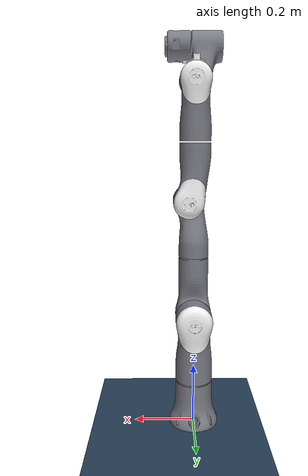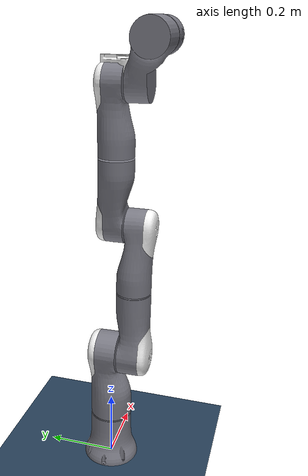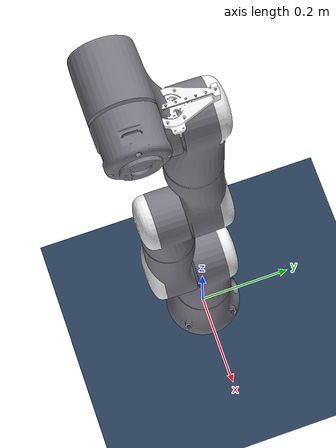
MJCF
<mujoco model="flexiv scene">
  <include file="flexiv_rizon4.xml"/>

  <visual>
    <headlight diffuse="0.6 0.6 0.6" ambient="0.3 0.3 0.3" specular="0 0 0"/>
    <rgba haze="0.15 0.25 0.35 1"/>
    <global azimuth="120" elevation="-10"/>
  </visual>

  <asset>
    <texture type="skybox" builtin="gradient" rgb1="0.3 0.5 0.7" rgb2="0 0 0" width="512" height="3072"/>
    <texture type="2d" name="groundplane" builtin="checker" mark="edge" rgb1="0.2 0.3 0.4" rgb2="0.1 0.2 0.3"
      markrgb="0.8 0.8 0.8" width="300" height="300"/>
    <material name="groundplane" texture="groundplane" texuniform="true" texrepeat="5 5" reflectance="0.2"/>
  </asset>

  <worldbody>
    <light pos="0 0 1.5" dir="0 0 -1" directional="true"/>
    <geom name="floor" size="0 0 0.05" type="plane" material="groundplane"/>
  </worldbody>
</mujoco>

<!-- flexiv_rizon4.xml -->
<mujoco model="A02L-M4">
  <compiler angle="radian" meshdir="assets" autolimits="true"/>

  <option integrator="implicitfast"/>

  <default>
    <default class="Rizon4">
      <geom type="mesh" material="robot"/>
      <position inheritrange="1"/>
      <default class="joint1">
        <joint actuatorfrcrange="-123 123" armature="3.17"/>
      </default>
      <default class="joint2">
        <joint actuatorfrcrange="-64 64" armature="1.38"/>
      </default>
      <default class="joint3">
        <joint actuatorfrcrange="-39 39" armature="0.13"/>
      </default>
    </default>
  </default>

  <asset>
    <material name="cover" specular="0.91" shininess="0.91" rgba="0.97 0.97 0.97 1"/>
    <material name="robot" specular="0.96" shininess="0.9" rgba="0.49 0.49 0.53 1"/>

    <mesh file="link0/link0.obj"/>
    <mesh file="link1/link1_0.obj"/>
    <mesh file="link1/link1_1.obj"/>
    <mesh file="link2/link2_0.obj"/>
    <mesh file="link2/link2_1.obj"/>
    <mesh file="link3/link3_0.obj"/>
    <mesh file="link3/link3_1.obj"/>
    <mesh file="link4/link4_0.obj"/>
    <mesh file="link4/link4_1.obj"/>
    <mesh file="link5/link5_0.obj"/>
    <mesh file="link5/link5_1.obj"/>
    <mesh file="link6/link6_0.obj"/>
    <mesh file="link6/link6_1.obj"/>
    <mesh file="link7/link7.obj"/>
  </asset>

  <worldbody>
    <light name="top" pos="0 0 2" mode="trackcom"/>
    <body name="base" childclass="Rizon4">
      <geom name="convex_mesh" mesh="link0"/>
      <body name="link1" pos="0 0 0.155" quat="0 0 0 1" gravcomp="1">
        <inertial pos="0.0001 0.0035 0.15" quat="0.999632 0.0271175 0 0" mass="3.596"
          diaginertia="0.0274 0.0273597 0.00704028"/>
        <joint name="joint1" axis="0 0 1" range="-2.8798 2.8798" class="joint1"/>
        <geom mesh="link1_0" material="cover"/>
        <geom mesh="link1_1"/>
        <body name="link2" pos="0 0.03 0.21" gravcomp="1">
          <inertial pos="-0.0003 0.0361 0.0998" quat="0.707105 -0.00174158 0.00174158 0.707105" mass="2.69"
            diaginertia="0.0239005 0.023 0.00359951"/>
          <joint name="joint2" axis="0 1 0" range="-2.3562 2.3562" class="joint1"/>
          <geom mesh="link2_0"/>
          <geom mesh="link2_1" material="cover"/>
          <body name="link3" pos="0 0.035 0.205" gravcomp="1">
            <inertial pos="-0.0123 -0.0012 0.1366" quat="0.991949 -0.0168831 0.0724717 0.102468" mass="2.354"
              diaginertia="0.0145488 0.0136885 0.00376272"/>
            <joint name="joint3" axis="0 0 1" range="-3.0543 3.0543" class="joint2"/>
            <geom mesh="link3_0"/>
            <geom mesh="link3_1" material="cover"/>
            <body name="link4" pos="-0.02 -0.03 0.19" quat="0 0 0 1" gravcomp="1">
              <inertial pos="-0.0129 0.0313 0.1034" quat="0.850968 -0.00510153 0.0639413 0.521285" mass="2.354"
                diaginertia="0.0186051 0.0180531 0.00274185"/>
              <joint name="joint4" axis="0 1 0" range="-1.9548 2.7751" class="joint2"/>
              <geom mesh="link4_0" material="cover"/>
              <geom mesh="link4_1"/>
              <body name="link5" pos="-0.02 0.025 0.195" quat="0 0 0 1" gravcomp="1">
                <inertial pos="0.0003 0.0014 0.1363" quat="0.999677 0.0254195 0 0" mass="2.31"
                  diaginertia="0.0142 0.0135254 0.00367456"/>
                <joint name="joint5" axis="0 0 1" range="-3.0543 3.0543" class="joint3"/>
                <geom mesh="link5_0"/>
                <geom mesh="link5_1" material="cover"/>
                <body name="link6" pos="0 0.03 0.19" gravcomp="1">
                  <inertial pos="0.0202 0.0596 0.0724" quat="0.858167 0.0778802 -0.159016 0.481869" mass="2.223"
                    diaginertia="0.0100226 0.00828177 0.00339567"/>
                  <joint name="joint6" axis="0 1 0" range="-1.4835 4.6251" class="joint3"/>
                  <geom mesh="link6_0"/>
                  <geom mesh="link6_1" material="cover"/>
                  <body name="link7" pos="-0.015 0.073 0.11" quat="0.707107 0 -0.707107 0" gravcomp="1">
                    <inertial pos="0.0003 0 0.0257" mass="0.768" diaginertia="0.001 0.0009 0.0009"/>
                    <joint name="joint7" axis="0 0 1" range="-3.0543 3.0543" class="joint3"/>
                    <geom mesh="link7"/>
                  </body>
                </body>
              </body>
            </body>
          </body>
        </body>
      </body>
    </body>
  </worldbody>

  <actuator>
    <position name="joint1" joint="joint1" class="joint1" kp="289" kv="61"/>
    <position name="joint2" joint="joint2" class="joint1" kp="673" kv="143"/>
    <position name="joint3" joint="joint3" class="joint2" kp="224" kv="36"/>
    <position name="joint4" joint="joint4" class="joint2" kp="373" kv="59"/>
    <position name="joint5" joint="joint5" class="joint3" kp="237" kv="13"/>
    <position name="joint6" joint="joint6" class="joint3" kp="232" kv="12"/>
    <position name="joint7" joint="joint7" class="joint3" kp="186" kv="9.9"/>
  </actuator>

  <keyframe>
    <key name="home" qpos="0 0 0 1.57 0 0 0" ctrl="0 0 0 1.57 0 0 0"/>
  </keyframe>
</mujoco>
